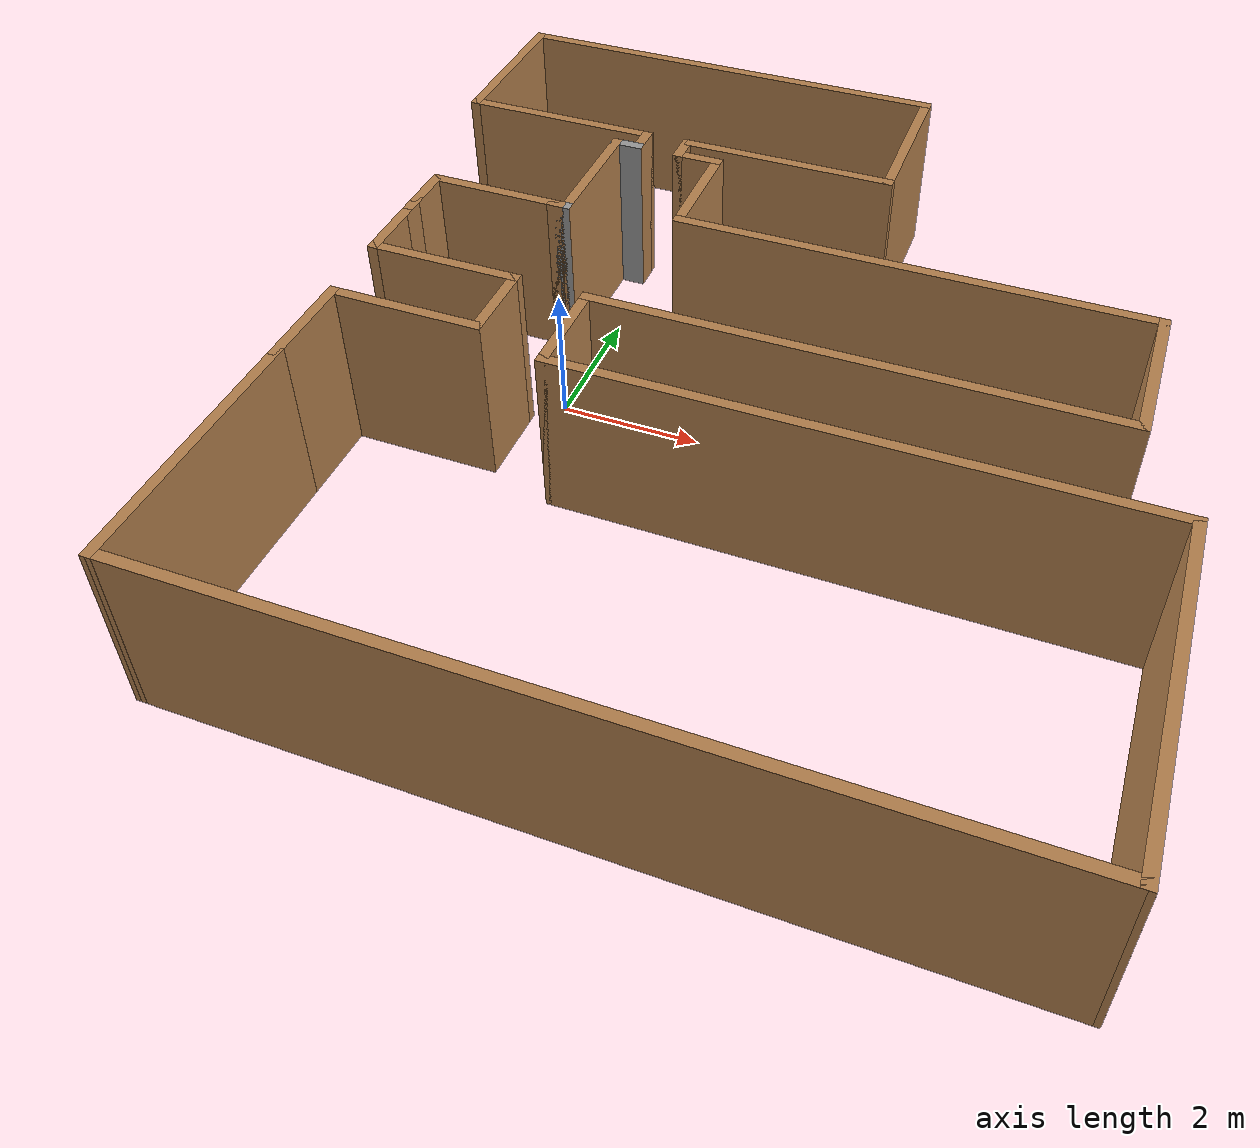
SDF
<?xml version='1.0'?>
<sdf version='1.7'>
  <model name='room.world'>
    <pose>2.72523 -0.216294 0 0 -0 0</pose>
    <link name='Wall_1'>
      <collision name='Wall_1_Collision'>
        <geometry>
          <box>
            <size>1.5 0.15 2.5</size>
          </box>
        </geometry>
        <pose>0 0 1.25 0 -0 0</pose>
      </collision>
      <visual name='Wall_1_Visual'>
        <pose>0 0 1.25 0 -0 0</pose>
        <geometry>
          <box>
            <size>1.5 0.15 2.5</size>
          </box>
        </geometry>
        <material>
          <script>
            <uri>file://media/materials/scripts/gazebo.material</uri>
            <name>Gazebo/Wood</name>
          </script>
          <ambient>1 1 1 1</ambient>
        </material>
        <meta>
          <layer>0</layer>
        </meta>
      </visual>
      <pose>-5.27517 -1.92483 0 0 -0 1.5708</pose>
    </link>
    <link name='Wall_10'>
      <collision name='Wall_10_Collision'>
        <geometry>
          <box>
            <size>0.25 0.15 2.5</size>
          </box>
        </geometry>
        <pose>0 0 1.25 0 -0 0</pose>
      </collision>
      <visual name='Wall_10_Visual'>
        <pose>0 0 1.25 0 -0 0</pose>
        <geometry>
          <box>
            <size>0.25 0.15 2.5</size>
          </box>
        </geometry>
        <material>
          <script>
            <uri>file://media/materials/scripts/gazebo.material</uri>
            <name>Gazebo/Grey</name>
          </script>
          <ambient>1 1 1 1</ambient>
        </material>
        <meta>
          <layer>0</layer>
        </meta>
      </visual>
      <pose>-3.27517 1.65017 0 0 -0 0</pose>
    </link>
    <link name='Wall_11'>
      <collision name='Wall_11_Collision'>
        <geometry>
          <box>
            <size>2 0.15 2.5</size>
          </box>
        </geometry>
        <pose>0 0 1.25 0 -0 0</pose>
      </collision>
      <visual name='Wall_11_Visual'>
        <pose>0 0 1.25 0 -0 0</pose>
        <geometry>
          <box>
            <size>2 0.15 2.5</size>
          </box>
        </geometry>
        <material>
          <script>
            <uri>file://media/materials/scripts/gazebo.material</uri>
            <name>Gazebo/Wood</name>
          </script>
          <ambient>1 1 1 1</ambient>
        </material>
        <meta>
          <layer>0</layer>
        </meta>
      </visual>
      <pose>-3.22517 2.57517 0 0 -0 1.5708</pose>
    </link>
    <link name='Wall_12'>
      <collision name='Wall_12_Collision'>
        <geometry>
          <box>
            <size>0.5 0.15 2.5</size>
          </box>
        </geometry>
        <pose>0 0 1.25 0 -0 0</pose>
      </collision>
      <visual name='Wall_12_Visual'>
        <pose>0 0 1.25 0 -0 0</pose>
        <geometry>
          <box>
            <size>0.5 0.15 2.5</size>
          </box>
        </geometry>
        <material>
          <script>
            <uri>file://media/materials/scripts/gazebo.material</uri>
            <name>Gazebo/Grey</name>
          </script>
          <ambient>1 1 1 1</ambient>
        </material>
        <meta>
          <layer>0</layer>
        </meta>
      </visual>
      <pose>-3.05017 3.50017 0 0 -0 0</pose>
    </link>
    <link name='Wall_13'>
      <collision name='Wall_13_Collision'>
        <geometry>
          <box>
            <size>0.5 0.15 2.5</size>
          </box>
        </geometry>
        <pose>0 0 1.25 0 -0 0</pose>
      </collision>
      <visual name='Wall_13_Visual'>
        <pose>0 0 1.25 0 -0 0</pose>
        <geometry>
          <box>
            <size>0.5 0.15 2.5</size>
          </box>
        </geometry>
        <material>
          <script>
            <uri>file://media/materials/scripts/gazebo.material</uri>
            <name>Gazebo/Wood</name>
          </script>
          <ambient>1 1 1 1</ambient>
        </material>
        <meta>
          <layer>0</layer>
        </meta>
      </visual>
      <pose>-2.87517 3.67517 0 0 -0 1.5708</pose>
    </link>
    <link name='Wall_14'>
      <collision name='Wall_14_Collision'>
        <geometry>
          <box>
            <size>3 0.15 2.5</size>
          </box>
        </geometry>
        <pose>0 0 1.25 0 -0 0</pose>
      </collision>
      <visual name='Wall_14_Visual'>
        <pose>0 0 1.25 0 -0 0</pose>
        <geometry>
          <box>
            <size>3 0.15 2.5</size>
          </box>
        </geometry>
        <material>
          <script>
            <uri>file://media/materials/scripts/gazebo.material</uri>
            <name>Gazebo/Wood</name>
          </script>
          <ambient>1 1 1 1</ambient>
        </material>
        <meta>
          <layer>0</layer>
        </meta>
      </visual>
      <pose>-4.30017 3.85017 0 0 -0 3.14159</pose>
    </link>
    <link name='Wall_15'>
      <collision name='Wall_15_Collision'>
        <geometry>
          <box>
            <size>2.5 0.15 2.5</size>
          </box>
        </geometry>
        <pose>0 0 1.25 0 -0 0</pose>
      </collision>
      <visual name='Wall_15_Visual'>
        <pose>0 0 1.25 0 -0 0</pose>
        <geometry>
          <box>
            <size>2.5 0.15 2.5</size>
          </box>
        </geometry>
        <material>
          <script>
            <uri>file://media/materials/scripts/gazebo.material</uri>
            <name>Gazebo/Wood</name>
          </script>
          <ambient>1 1 1 1</ambient>
        </material>
        <meta>
          <layer>0</layer>
        </meta>
      </visual>
      <pose>-5.72517 5.02517 0 0 -0 1.5708</pose>
    </link>
    <link name='Wall_16'>
      <collision name='Wall_16_Collision'>
        <geometry>
          <box>
            <size>6.75 0.15 2.5</size>
          </box>
        </geometry>
        <pose>0 0 1.25 0 -0 0</pose>
      </collision>
      <visual name='Wall_16_Visual'>
        <pose>0 0 1.25 0 -0 0</pose>
        <geometry>
          <box>
            <size>6.75 0.15 2.5</size>
          </box>
        </geometry>
        <material>
          <script>
            <uri>file://media/materials/scripts/gazebo.material</uri>
            <name>Gazebo/Wood</name>
          </script>
          <ambient>1 1 1 1</ambient>
        </material>
        <meta>
          <layer>0</layer>
        </meta>
      </visual>
      <pose>-2.42517 6.20017 0 0 -0 0</pose>
    </link>
    <link name='Wall_17'>
      <collision name='Wall_17_Collision'>
        <geometry>
          <box>
            <size>2.5 0.15 2.5</size>
          </box>
        </geometry>
        <pose>0 0 1.25 0 -0 0</pose>
      </collision>
      <visual name='Wall_17_Visual'>
        <pose>0 0 1.25 0 -0 0</pose>
        <geometry>
          <box>
            <size>2.5 0.15 2.5</size>
          </box>
        </geometry>
        <material>
          <script>
            <uri>file://media/materials/scripts/gazebo.material</uri>
            <name>Gazebo/Wood</name>
          </script>
          <ambient>1 1 1 1</ambient>
        </material>
        <meta>
          <layer>0</layer>
        </meta>
      </visual>
      <pose>0.87483 5.02517 0 0 -0 -1.5708</pose>
    </link>
    <link name='Wall_18'>
      <collision name='Wall_18_Collision'>
        <geometry>
          <box>
            <size>3.25 0.15 2.5</size>
          </box>
        </geometry>
        <pose>0 0 1.25 0 -0 0</pose>
      </collision>
      <visual name='Wall_18_Visual'>
        <pose>0 0 1.25 0 -0 0</pose>
        <geometry>
          <box>
            <size>3.25 0.15 2.5</size>
          </box>
        </geometry>
        <material>
          <script>
            <uri>file://media/materials/scripts/gazebo.material</uri>
            <name>Gazebo/Wood</name>
          </script>
          <ambient>1 1 1 1</ambient>
        </material>
        <meta>
          <layer>0</layer>
        </meta>
      </visual>
      <pose>-0.67517 3.85017 0 0 -0 3.14159</pose>
    </link>
    <link name='Wall_19'>
      <collision name='Wall_19_Collision'>
        <geometry>
          <box>
            <size>0.5 0.15 2.5</size>
          </box>
        </geometry>
        <pose>0 0 1.25 0 -0 0</pose>
      </collision>
      <visual name='Wall_19_Visual'>
        <pose>0 0 1.25 0 -0 0</pose>
        <geometry>
          <box>
            <size>0.5 0.15 2.5</size>
          </box>
        </geometry>
        <material>
          <script>
            <uri>file://media/materials/scripts/gazebo.material</uri>
            <name>Gazebo/Wood</name>
          </script>
          <ambient>1 1 1 1</ambient>
        </material>
        <meta>
          <layer>0</layer>
        </meta>
      </visual>
      <pose>-2.22517 3.67517 0 0 -0 -1.5708</pose>
    </link>
    <link name='Wall_2'>
      <collision name='Wall_2_Collision'>
        <geometry>
          <box>
            <size>2.25 0.15 2.5</size>
          </box>
        </geometry>
        <pose>0 0 1.25 0 -0 0</pose>
      </collision>
      <visual name='Wall_2_Visual'>
        <pose>0 0 1.25 0 -0 0</pose>
        <geometry>
          <box>
            <size>2.25 0.15 2.5</size>
          </box>
        </geometry>
        <material>
          <script>
            <uri>file://media/materials/scripts/gazebo.material</uri>
            <name>Gazebo/Wood</name>
          </script>
          <ambient>1 1 1 1</ambient>
        </material>
        <meta>
          <layer>0</layer>
        </meta>
      </visual>
      <pose>-4.22517 -1.24983 0 0 -0 0</pose>
    </link>
    <link name='Wall_20'>
      <collision name='Wall_20_Collision'>
        <geometry>
          <box>
            <size>0.75 0.15 2.5</size>
          </box>
        </geometry>
        <pose>0 0 1.25 0 -0 0</pose>
      </collision>
      <visual name='Wall_20_Visual'>
        <pose>0 0 1.25 0 -0 0</pose>
        <geometry>
          <box>
            <size>0.75 0.15 2.5</size>
          </box>
        </geometry>
        <material>
          <script>
            <uri>file://media/materials/scripts/gazebo.material</uri>
            <name>Gazebo/Wood</name>
          </script>
          <ambient>1 1 1 1</ambient>
        </material>
        <meta>
          <layer>0</layer>
        </meta>
      </visual>
      <pose>-1.92517 3.50017 0 0 -0 0</pose>
    </link>
    <link name='Wall_21'>
      <collision name='Wall_21_Collision'>
        <geometry>
          <box>
            <size>1.75 0.15 2.5</size>
          </box>
        </geometry>
        <pose>0 0 1.25 0 -0 0</pose>
      </collision>
      <visual name='Wall_21_Visual'>
        <pose>0 0 1.25 0 -0 0</pose>
        <geometry>
          <box>
            <size>1.75 0.15 2.5</size>
          </box>
        </geometry>
        <material>
          <script>
            <uri>file://media/materials/scripts/gazebo.material</uri>
            <name>Gazebo/Wood</name>
          </script>
          <ambient>1 1 1 1</ambient>
        </material>
        <meta>
          <layer>0</layer>
        </meta>
      </visual>
      <pose>-1.62517 2.70017 0 0 -0 -1.5708</pose>
    </link>
    <link name='Wall_22'>
      <collision name='Wall_22_Collision'>
        <geometry>
          <box>
            <size>6.75 0.15 2.5</size>
          </box>
        </geometry>
        <pose>0 0 1.25 0 -0 0</pose>
      </collision>
      <visual name='Wall_22_Visual'>
        <pose>0 0 1.25 0 -0 0</pose>
        <geometry>
          <box>
            <size>6.75 0.15 2.5</size>
          </box>
        </geometry>
        <material>
          <script>
            <uri>file://media/materials/scripts/gazebo.material</uri>
            <name>Gazebo/Wood</name>
          </script>
          <ambient>1 1 1 1</ambient>
        </material>
        <meta>
          <layer>0</layer>
        </meta>
      </visual>
      <pose>1.67483 1.90017 0 0 -0 0</pose>
    </link>
    <link name='Wall_23'>
      <collision name='Wall_23_Collision'>
        <geometry>
          <box>
            <size>2.25 0.15 2.5</size>
          </box>
        </geometry>
        <pose>0 0 1.25 0 -0 0</pose>
      </collision>
      <visual name='Wall_23_Visual'>
        <pose>0 0 1.25 0 -0 0</pose>
        <geometry>
          <box>
            <size>2.25 0.15 2.5</size>
          </box>
        </geometry>
        <material>
          <script>
            <uri>file://media/materials/scripts/gazebo.material</uri>
            <name>Gazebo/Wood</name>
          </script>
          <ambient>1 1 1 1</ambient>
        </material>
        <meta>
          <layer>0</layer>
        </meta>
      </visual>
      <pose>4.97483 0.85017 0 0 -0 -1.5708</pose>
    </link>
    <link name='Wall_24'>
      <collision name='Wall_24_Collision'>
        <geometry>
          <box>
            <size>7.25 0.15 2.5</size>
          </box>
        </geometry>
        <pose>0 0 1.25 0 -0 0</pose>
      </collision>
      <visual name='Wall_24_Visual'>
        <pose>0 0 1.25 0 -0 0</pose>
        <geometry>
          <box>
            <size>7.25 0.15 2.5</size>
          </box>
        </geometry>
        <material>
          <script>
            <uri>file://media/materials/scripts/gazebo.material</uri>
            <name>Gazebo/Wood</name>
          </script>
          <ambient>1 1 1 1</ambient>
        </material>
        <meta>
          <layer>0</layer>
        </meta>
      </visual>
      <pose>1.42483 -0.19983 0 0 -0 3.14159</pose>
    </link>
    <link name='Wall_25'>
      <collision name='Wall_25_Collision'>
        <geometry>
          <box>
            <size>1.5 0.15 2.5</size>
          </box>
        </geometry>
        <pose>0 0 1.25 0 -0 0</pose>
      </collision>
      <visual name='Wall_25_Visual'>
        <pose>0 0 1.25 0 -0 0</pose>
        <geometry>
          <box>
            <size>1.5 0.15 2.5</size>
          </box>
        </geometry>
        <material>
          <script>
            <uri>file://media/materials/scripts/gazebo.material</uri>
            <name>Gazebo/Wood</name>
          </script>
          <ambient>1 1 1 1</ambient>
        </material>
        <meta>
          <layer>0</layer>
        </meta>
      </visual>
      <pose>-2.12517 -0.87483 0 0 -0 -1.5708</pose>
    </link>
    <link name='Wall_26'>
      <collision name='Wall_26_Collision'>
        <geometry>
          <box>
            <size>8 0.15 2.5</size>
          </box>
        </geometry>
        <pose>0 0 1.25 0 -0 0</pose>
      </collision>
      <visual name='Wall_26_Visual'>
        <pose>0 0 1.25 0 -0 0</pose>
        <geometry>
          <box>
            <size>8 0.15 2.5</size>
          </box>
        </geometry>
        <material>
          <script>
            <uri>file://media/materials/scripts/gazebo.material</uri>
            <name>Gazebo/Wood</name>
          </script>
          <ambient>1 1 1 1</ambient>
        </material>
        <meta>
          <layer>0</layer>
        </meta>
      </visual>
      <pose>1.79983 -1.54983 0 0 -0 0</pose>
    </link>
    <link name='Wall_27'>
      <collision name='Wall_27_Collision'>
        <geometry>
          <box>
            <size>4.75 0.15 2.5</size>
          </box>
        </geometry>
        <pose>0 0 1.25 0 -0 0</pose>
      </collision>
      <visual name='Wall_27_Visual'>
        <pose>0 0 1.25 0 -0 0</pose>
        <geometry>
          <box>
            <size>4.75 0.15 2.5</size>
          </box>
        </geometry>
        <material>
          <script>
            <uri>file://media/materials/scripts/gazebo.material</uri>
            <name>Gazebo/Wood</name>
          </script>
          <ambient>1 1 1 1</ambient>
        </material>
        <meta>
          <layer>0</layer>
        </meta>
      </visual>
      <pose>5.72483 -3.84983 0 0 -0 -1.5708</pose>
    </link>
    <link name='Wall_3'>
      <collision name='Wall_3_Collision'>
        <geometry>
          <box>
            <size>1.25 0.15 2.5</size>
          </box>
        </geometry>
        <pose>0 0 1.25 0 -0 0</pose>
      </collision>
      <visual name='Wall_3_Visual'>
        <pose>0 0 1.25 0 -0 0</pose>
        <geometry>
          <box>
            <size>1.25 0.15 2.5</size>
          </box>
        </geometry>
        <material>
          <script>
            <uri>file://media/materials/scripts/gazebo.material</uri>
            <name>Gazebo/Wood</name>
          </script>
          <ambient>1 1 1 1</ambient>
        </material>
        <meta>
          <layer>0</layer>
        </meta>
      </visual>
      <pose>-3.17517 -0.69983 0 0 -0 1.5708</pose>
    </link>
    <link name='Wall_31'>
      <collision name='Wall_31_Collision'>
        <geometry>
          <box>
            <size>3.75 0.15 2.5</size>
          </box>
        </geometry>
        <pose>0 0 1.25 0 -0 0</pose>
      </collision>
      <visual name='Wall_31_Visual'>
        <pose>0 0 1.25 0 -0 0</pose>
        <geometry>
          <box>
            <size>3.75 0.15 2.5</size>
          </box>
        </geometry>
        <material>
          <script>
            <uri>file://media/materials/scripts/gazebo.material</uri>
            <name>Gazebo/Wood</name>
          </script>
          <ambient>1 1 1 1</ambient>
        </material>
        <meta>
          <layer>0</layer>
        </meta>
      </visual>
      <pose>-5.27517 -4.39983 0 0 -0 -1.5708</pose>
    </link>
    <link name='Wall_32'>
      <collision name='Wall_32_Collision'>
        <geometry>
          <box>
            <size>11.1501 0.15 2.5</size>
          </box>
        </geometry>
        <pose>0 0 1.25 0 -0 0</pose>
      </collision>
      <visual name='Wall_32_Visual'>
        <pose>0 0 1.25 0 -0 0</pose>
        <geometry>
          <box>
            <size>11.1501 0.15 2.5</size>
          </box>
        </geometry>
        <material>
          <script>
            <uri>file://media/materials/scripts/gazebo.material</uri>
            <name>Gazebo/Wood</name>
          </script>
          <ambient>1 1 1 1</ambient>
        </material>
        <meta>
          <layer>0</layer>
        </meta>
      </visual>
      <pose>0.22483 -6.17483 0 0 -0 0.004545</pose>
    </link>
    <link name='Wall_4'>
      <collision name='Wall_4_Collision'>
        <geometry>
          <box>
            <size>2.25 0.15 2.5</size>
          </box>
        </geometry>
        <pose>0 0 1.25 0 -0 0</pose>
      </collision>
      <visual name='Wall_4_Visual'>
        <pose>0 0 1.25 0 -0 0</pose>
        <geometry>
          <box>
            <size>2.25 0.15 2.5</size>
          </box>
        </geometry>
        <material>
          <script>
            <uri>file://media/materials/scripts/gazebo.material</uri>
            <name>Gazebo/Wood</name>
          </script>
          <ambient>1 1 1 1</ambient>
        </material>
        <meta>
          <layer>0</layer>
        </meta>
      </visual>
      <pose>-4.22517 -0.14983 0 0 -0 3.14159</pose>
    </link>
    <link name='Wall_5'>
      <collision name='Wall_5_Collision'>
        <geometry>
          <box>
            <size>1 0.15 2.5</size>
          </box>
        </geometry>
        <pose>0 0 1.25 0 -0 0</pose>
      </collision>
      <visual name='Wall_5_Visual'>
        <pose>0 0 1.25 0 -0 0</pose>
        <geometry>
          <box>
            <size>1 0.15 2.5</size>
          </box>
        </geometry>
        <material>
          <script>
            <uri>file://media/materials/scripts/gazebo.material</uri>
            <name>Gazebo/Wood</name>
          </script>
          <ambient>1 1 1 1</ambient>
        </material>
        <meta>
          <layer>0</layer>
        </meta>
      </visual>
      <pose>-5.27517 0.27517 0 0 -0 1.5708</pose>
    </link>
    <link name='Wall_6'>
      <collision name='Wall_6_Collision'>
        <geometry>
          <box>
            <size>0.5 0.15 2.5</size>
          </box>
        </geometry>
        <pose>0 0 1.25 0 -0 0</pose>
      </collision>
      <visual name='Wall_6_Visual'>
        <pose>0 0 1.25 0 -0 0</pose>
        <geometry>
          <box>
            <size>0.5 0.15 2.5</size>
          </box>
        </geometry>
        <material>
          <script>
            <uri>file://media/materials/scripts/gazebo.material</uri>
            <name>Gazebo/Wood</name>
          </script>
          <ambient>1 1 1 1</ambient>
        </material>
        <meta>
          <layer>0</layer>
        </meta>
      </visual>
      <pose>-5.27517 0.87517 0 0 -0 1.5708</pose>
    </link>
    <link name='Wall_7'>
      <collision name='Wall_7_Collision'>
        <geometry>
          <box>
            <size>0.75 0.15 2.5</size>
          </box>
        </geometry>
        <pose>0 0 1.25 0 -0 0</pose>
      </collision>
      <visual name='Wall_7_Visual'>
        <pose>0 0 1.25 0 -0 0</pose>
        <geometry>
          <box>
            <size>0.75 0.15 2.5</size>
          </box>
        </geometry>
        <material>
          <script>
            <uri>file://media/materials/scripts/gazebo.material</uri>
            <name>Gazebo/Wood</name>
          </script>
          <ambient>1 1 1 1</ambient>
        </material>
        <meta>
          <layer>0</layer>
        </meta>
      </visual>
      <pose>-5.27517 1.35017 0 0 -0 1.5708</pose>
    </link>
    <link name='Wall_8'>
      <collision name='Wall_8_Collision'>
        <geometry>
          <box>
            <size>2 0.15 2.5</size>
          </box>
        </geometry>
        <pose>0 0 1.25 0 -0 0</pose>
      </collision>
      <visual name='Wall_8_Visual'>
        <pose>0 0 1.25 0 -0 0</pose>
        <geometry>
          <box>
            <size>2 0.15 2.5</size>
          </box>
        </geometry>
        <material>
          <script>
            <uri>file://media/materials/scripts/gazebo.material</uri>
            <name>Gazebo/Wood</name>
          </script>
          <ambient>1 1 1 1</ambient>
        </material>
        <meta>
          <layer>0</layer>
        </meta>
      </visual>
      <pose>-4.35017 1.65017 0 0 -0 0</pose>
    </link>
    <link name='Wall_9'>
      <collision name='Wall_9_Collision'>
        <geometry>
          <box>
            <size>0.25 0.15 2.5</size>
          </box>
        </geometry>
        <pose>0 0 1.25 0 -0 0</pose>
      </collision>
      <visual name='Wall_9_Visual'>
        <pose>0 0 1.25 0 -0 0</pose>
        <geometry>
          <box>
            <size>0.25 0.15 2.5</size>
          </box>
        </geometry>
        <material>
          <script>
            <uri>file://media/materials/scripts/gazebo.material</uri>
            <name>Gazebo/Wood</name>
          </script>
          <ambient>1 1 1 1</ambient>
        </material>
        <meta>
          <layer>0</layer>
        </meta>
      </visual>
      <pose>-3.37517 1.65017 0 0 -0 0</pose>
    </link>
    <static>1</static>
  </model>
</sdf>
